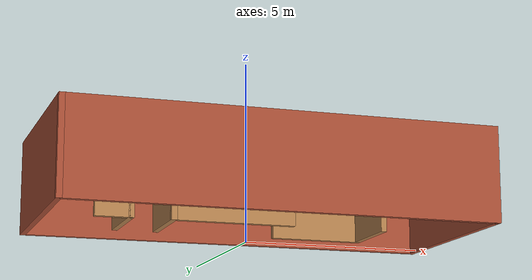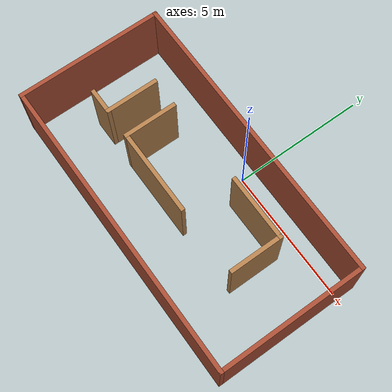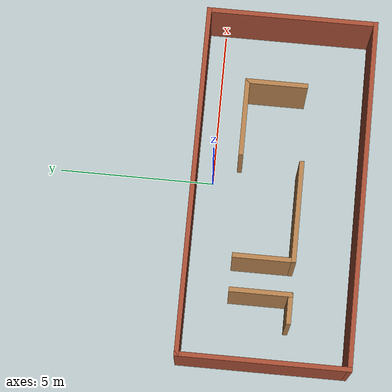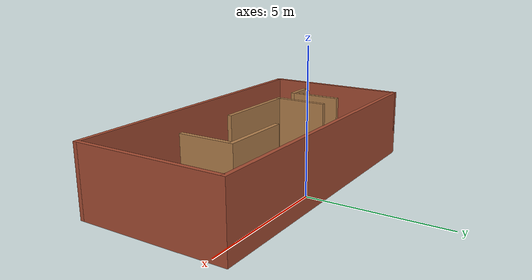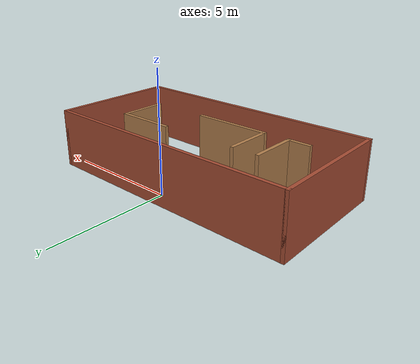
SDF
<?xml version='1.0'?>
<sdf version='1.7'>
  <model name='maze_room'>
    <pose>-0.406479 -2.07937 0 0 -0 0</pose>
    <link name='Wall_11'>
      <collision name='Wall_11_Collision'>
        <geometry>
          <box>
            <size>2.5 0.15 2.5</size>
          </box>
        </geometry>
        <pose>0 0 1.25 0 -0 0</pose>
      </collision>
      <visual name='Wall_11_Visual'>
        <pose>0 0 1.25 0 -0 0</pose>
        <geometry>
          <box>
            <size>2.5 0.15 2.5</size>
          </box>
        </geometry>
        <material>
          <script>
            <uri>file://media/materials/scripts/gazebo.material</uri>
            <name>Gazebo/Wood</name>
          </script>
          <ambient>1 1 1 1</ambient>
        </material>
        <meta>
          <layer>0</layer>
        </meta>
      </visual>
      <pose>2.13196 1.24886 0 0 -0 0</pose>
    </link>
    <link name='Wall_12'>
      <collision name='Wall_12_Collision'>
        <geometry>
          <box>
            <size>2 0.15 2.5</size>
          </box>
        </geometry>
        <pose>0 0 1.25 0 -0 0</pose>
      </collision>
      <visual name='Wall_12_Visual'>
        <pose>0 0 1.25 0 -0 0</pose>
        <geometry>
          <box>
            <size>2 0.15 2.5</size>
          </box>
        </geometry>
        <material>
          <script>
            <uri>file://media/materials/scripts/gazebo.material</uri>
            <name>Gazebo/Wood</name>
          </script>
          <ambient>1 1 1 1</ambient>
        </material>
        <meta>
          <layer>0</layer>
        </meta>
      </visual>
      <pose>3.30696 0.323858 0 0 -0 -1.5708</pose>
    </link>
    <link name='Wall_14'>
      <collision name='Wall_14_Collision'>
        <geometry>
          <box>
            <size>3.25 0.15 2.5</size>
          </box>
        </geometry>
        <pose>0 0 1.25 0 -0 0</pose>
      </collision>
      <visual name='Wall_14_Visual'>
        <pose>0 0 1.25 0 -0 0</pose>
        <geometry>
          <box>
            <size>3.25 0.15 2.5</size>
          </box>
        </geometry>
        <material>
          <script>
            <uri>file://media/materials/scripts/gazebo.material</uri>
            <name>Gazebo/Wood</name>
          </script>
          <ambient>1 1 1 1</ambient>
        </material>
        <meta>
          <layer>0</layer>
        </meta>
      </visual>
      <pose>-0.775548 -0.682654 0 0 -0 3.14159</pose>
    </link>
    <link name='Wall_15'>
      <collision name='Wall_15_Collision'>
        <geometry>
          <box>
            <size>2 0.15 2.5</size>
          </box>
        </geometry>
        <pose>0 0 1.25 0 -0 0</pose>
      </collision>
      <visual name='Wall_15_Visual'>
        <pose>0 0 1.25 0 -0 0</pose>
        <geometry>
          <box>
            <size>2 0.15 2.5</size>
          </box>
        </geometry>
        <material>
          <script>
            <uri>file://media/materials/scripts/gazebo.material</uri>
            <name>Gazebo/Wood</name>
          </script>
          <ambient>1 1 1 1</ambient>
        </material>
        <meta>
          <layer>0</layer>
        </meta>
      </visual>
      <pose>-2.32555 0.242346 0 0 -0 1.5708</pose>
    </link>
    <link name='Wall_17'>
      <collision name='Wall_17_Collision'>
        <geometry>
          <box>
            <size>2 0.15 2.5</size>
          </box>
        </geometry>
        <pose>0 0 1.25 0 -0 0</pose>
      </collision>
      <visual name='Wall_17_Visual'>
        <pose>0 0 1.25 0 -0 0</pose>
        <geometry>
          <box>
            <size>2 0.15 2.5</size>
          </box>
        </geometry>
        <material>
          <script>
            <uri>file://media/materials/scripts/gazebo.material</uri>
            <name>Gazebo/Wood</name>
          </script>
          <ambient>1 1 1 1</ambient>
        </material>
        <meta>
          <layer>0</layer>
        </meta>
      </visual>
      <pose>-3.40795 0.247814 0 0 -0 -1.5708</pose>
    </link>
    <link name='Wall_18'>
      <collision name='Wall_18_Collision'>
        <geometry>
          <box>
            <size>1 0.15 2.5</size>
          </box>
        </geometry>
        <pose>0 0 1.25 0 -0 0</pose>
      </collision>
      <visual name='Wall_18_Visual'>
        <pose>0 0 1.25 0 -0 0</pose>
        <geometry>
          <box>
            <size>1 0.15 2.5</size>
          </box>
        </geometry>
        <material>
          <script>
            <uri>file://media/materials/scripts/gazebo.material</uri>
            <name>Gazebo/Wood</name>
          </script>
          <ambient>1 1 1 1</ambient>
        </material>
        <meta>
          <layer>0</layer>
        </meta>
      </visual>
      <pose>-3.83295 -0.677186 0 0 -0 3.14159</pose>
    </link>
    <link name='Wall_6'>
      <collision name='Wall_6_Collision'>
        <geometry>
          <box>
            <size>11.25 0.15 2.5</size>
          </box>
        </geometry>
        <pose>0 0 1.25 0 -0 0</pose>
      </collision>
      <visual name='Wall_6_Visual'>
        <pose>0 0 1.25 0 -0 0</pose>
        <geometry>
          <box>
            <size>11.25 0.15 2.5</size>
          </box>
        </geometry>
        <material>
          <script>
            <uri>file://media/materials/scripts/gazebo.material</uri>
            <name>Gazebo/Bricks</name>
          </script>
          <ambient>1 1 1 1</ambient>
        </material>
        <meta>
          <layer>0</layer>
        </meta>
      </visual>
      <pose>0 -2.675 0 0 -0 3.14159</pose>
    </link>
    <link name='Wall_7'>
      <collision name='Wall_7_Collision'>
        <geometry>
          <box>
            <size>5.5 0.15 2.5</size>
          </box>
        </geometry>
        <pose>0 0 1.25 0 -0 0</pose>
      </collision>
      <visual name='Wall_7_Visual'>
        <pose>0 0 1.25 0 -0 0</pose>
        <geometry>
          <box>
            <size>5.5 0.15 2.5</size>
          </box>
        </geometry>
        <material>
          <script>
            <uri>file://media/materials/scripts/gazebo.material</uri>
            <name>Gazebo/Bricks</name>
          </script>
          <ambient>1 1 1 1</ambient>
        </material>
        <meta>
          <layer>0</layer>
        </meta>
      </visual>
      <pose>-5.55 -0 0 0 -0 1.5708</pose>
    </link>
    <link name='Wall_8'>
      <collision name='Wall_8_Collision'>
        <geometry>
          <box>
            <size>11.25 0.15 2.5</size>
          </box>
        </geometry>
        <pose>0 0 1.25 0 -0 0</pose>
      </collision>
      <visual name='Wall_8_Visual'>
        <pose>0 0 1.25 0 -0 0</pose>
        <geometry>
          <box>
            <size>11.25 0.15 2.5</size>
          </box>
        </geometry>
        <material>
          <script>
            <uri>file://media/materials/scripts/gazebo.material</uri>
            <name>Gazebo/Bricks</name>
          </script>
          <ambient>1 1 1 1</ambient>
        </material>
        <meta>
          <layer>0</layer>
        </meta>
      </visual>
      <pose>0 2.675 0 0 -0 0</pose>
    </link>
    <link name='Wall_9'>
      <collision name='Wall_9_Collision'>
        <geometry>
          <box>
            <size>5.5 0.15 2.5</size>
          </box>
        </geometry>
        <pose>0 0 1.25 0 -0 0</pose>
      </collision>
      <visual name='Wall_9_Visual'>
        <pose>0 0 1.25 0 -0 0</pose>
        <geometry>
          <box>
            <size>5.5 0.15 2.5</size>
          </box>
        </geometry>
        <material>
          <script>
            <uri>file://media/materials/scripts/gazebo.material</uri>
            <name>Gazebo/Bricks</name>
          </script>
          <ambient>1 1 1 1</ambient>
        </material>
        <meta>
          <layer>0</layer>
        </meta>
      </visual>
      <pose>5.55 -0 0 0 -0 -1.5708</pose>
    </link>
    <static>1</static>
  </model>
</sdf>
